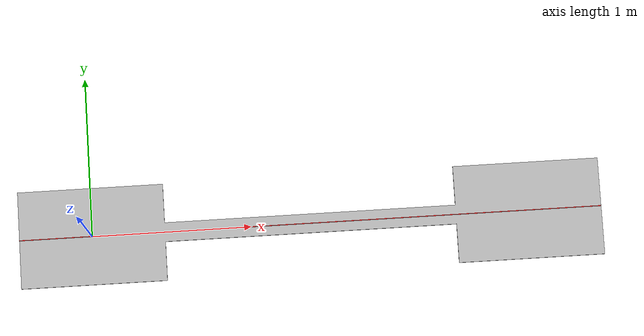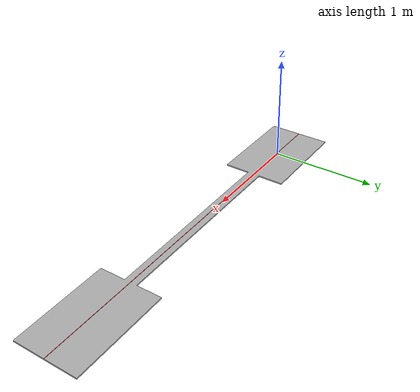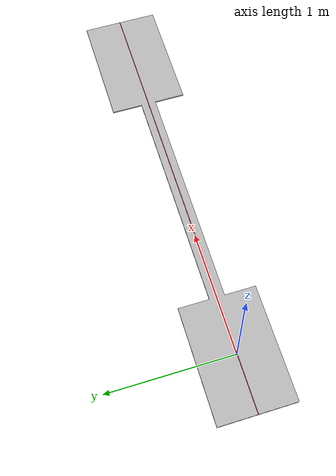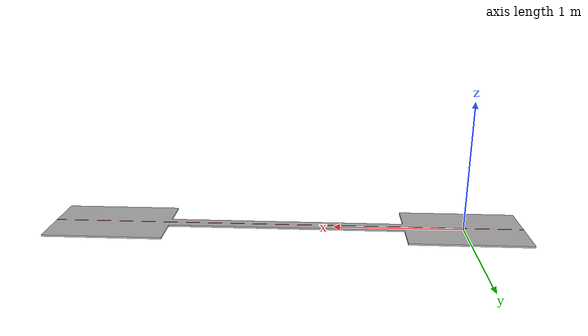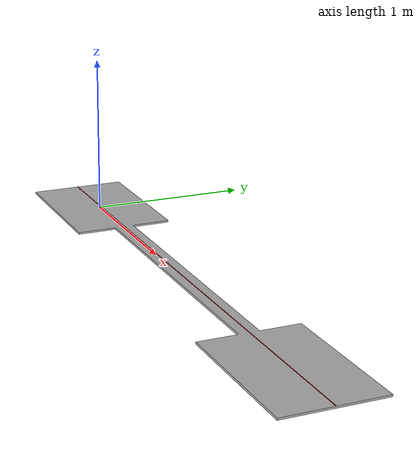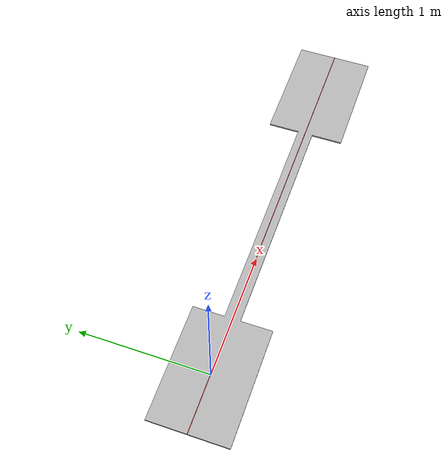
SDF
<?xml version="1.0"?>
<sdf version='1.6'>
  <world name='default'>
    <physics type="ode">
    <max_step_size>0.001</max_step_size>
    <real_time_factor>1</real_time_factor>
    <real_time_update_rate>1000</real_time_update_rate>
        <ode>
            <solver>
              <iters>300</iters>
            </solver>
        </ode>
    </physics>

    <scene>
      <shadows>false</shadows>
    </scene>

    <gravity>0 0 -9.81</gravity>

    <!-- Add system-level physics and sensor plugins to each world -->
    <plugin
      filename="libgz-sim8-physics-system"
      name="gz::sim::systems::Physics">
    </plugin>

    <plugin
      filename="libgz-sim8-scene-broadcaster-system"
      name="gz::sim::systems::SceneBroadcaster">
    </plugin>

    <plugin
      filename="libgz-sim8-sensors-system"
      name="gz::sim::systems::Sensors"/>

    <plugin
      filename="libgz-sim8-user-commands-system"
      name="gz::sim::systems::UserCommands"/>
    <plugin
      filename="libgz-sim8-contact-system.so"
      name="gz::sim::systems::Contact">
    </plugin>

    <plugin
      filename="libgz-sim8-imu-system.so"
      name="gz::sim::systems::Imu">
    </plugin>

    <plugin
      filename="libgz-sim8-forcetorque-system.so"
      name="gz::sim::systems::ForceTorque"/>

    <plugin
      filename="libgz-sim-apply-link-wrench-system.so"
      name="gz::sim::systems::ApplyLinkWrench"/>

    <light name="sun" type="directional">
      <cast_shadows>true</cast_shadows>
      <pose>0 0 10 0 0 0</pose>
      <diffuse>1 1 1 1</diffuse>
      <specular>0.1 0.1 0.1 1</specular>
      <direction>-1 0 -1</direction>
    </light>

    <include>
      <uri>model://beam_world_12cm</uri>
      <pose>1.3716 0 0.0127  0 0 0</pose>
    </include>
  </world>
</sdf>

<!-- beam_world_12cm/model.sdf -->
<sdf version="1.6">
    <model name="beam_world_12cm">
      <static>true</static>
      <link name="body">
        <visual name="visual">
          <geometry>
            <mesh>
                <uri>meshes/beam_world_12cm.stl</uri>
            </mesh>
          </geometry>
        </visual>
        <visual name="centreline">
          <pose>0 0 0.0006 0 0 0</pose>
          <geometry>
            <box>
              <size>3.6576 0.004 0.001</size>
            </box>
          </geometry>
          <material>
            <ambient>1 0.1 0.1 1</ambient>
            <diffuse>1 0.1 0.1 1</diffuse>
            <specular>0 0 0 1</specular>
            <emissive>1 0.1 0.1 1</emissive>
          </material>
        </visual>

        <collision name="collision">
          <geometry>
            <mesh>
                <uri>meshes/beam_world_12cm.stl</uri>
            </mesh>
          </geometry>
          <surface>
            <friction>
              <ode>
                <mu>100</mu>
                <mu2>100</mu2>
              </ode>
            </friction>
          </surface>
        </collision>
      </link>
    </model>
</sdf>
